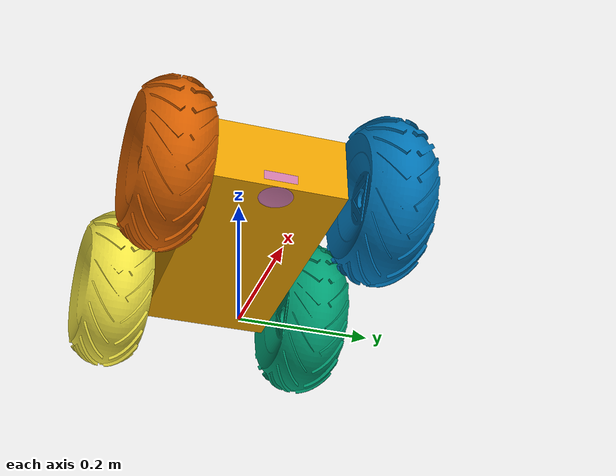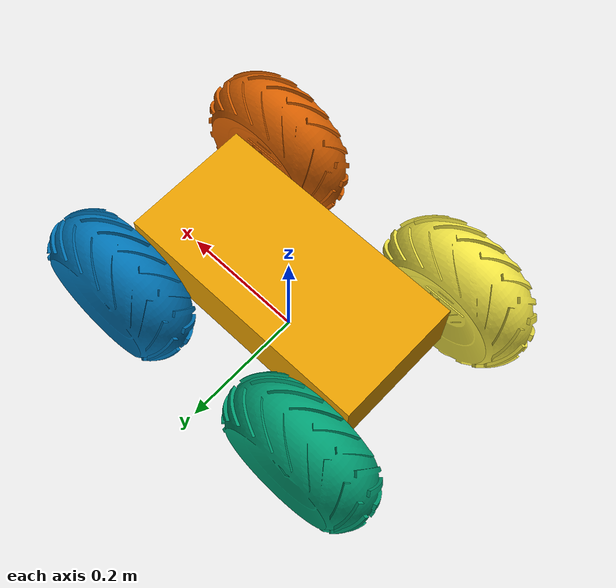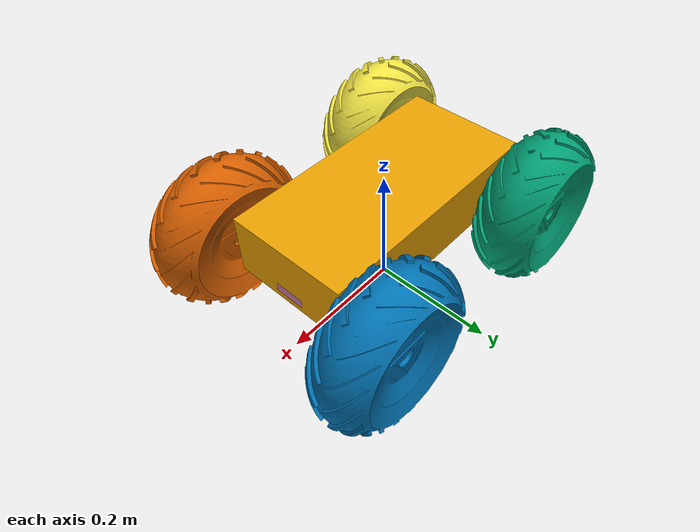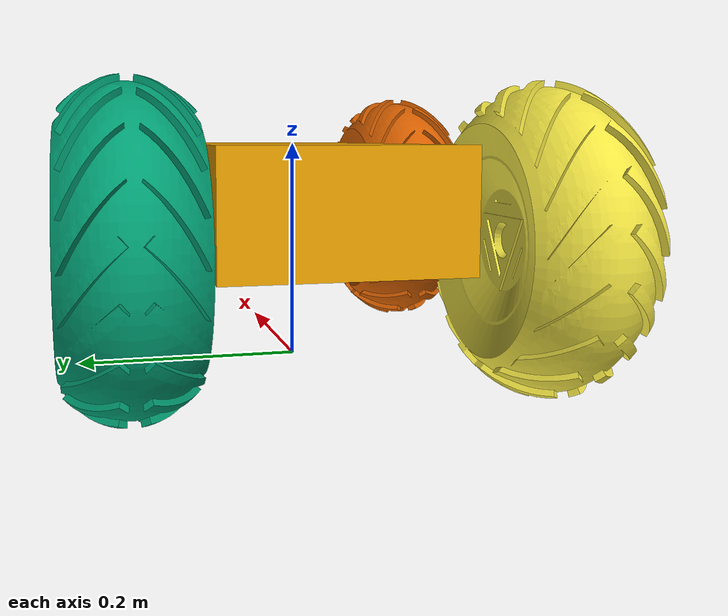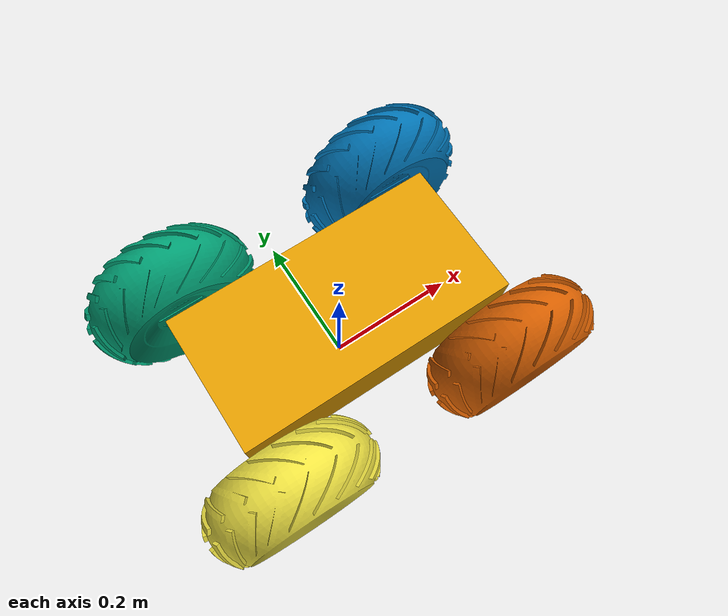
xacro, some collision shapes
<?xml version='1.0'?>

<robot name="iBot" xmlns:xacro="http://www.ros.org/wiki/xacro">

  <xacro:include filename="iBot.gazebo" />
  <!-- ************************ ROBOT CONSTANTS ****************************** -->
  <xacro:property name="chassis_length" value="0.4"/>
  <xacro:property name="chassis_width" value="0.2"/>
  <xacro:property name="chassis_height" value="0.1"/>
  <xacro:property name="wheel_radius" value="0.125"/>
  <xacro:property name="wheel_width" value="0.1"/>
  <xacro:property name="wheel_ygap" value="0.01"/>
  <xacro:property name="wheel_zoff" value="0.025"/>
  <xacro:property name="wheel_xoff" value="0.175"/>
  <xacro:property name="camera_length" value="0.05"/>
  <xacro:property name="camera_xoff" value="${(chassis_length/2-camera_length/2)}"/>
  <xacro:property name="camera_yoff" value="0"/>
  <xacro:property name="camera_zoff" value="-${(chassis_height/2-camera_length/2)}"/>
  <xacro:property name="imu_length" value="0.05"/>

  <!-- *******************INERTIAS ***************************************** -->
  <xacro:macro name="cylinder_inertia" params="m r h">
    <inertial>
      <origin xyz="0 0 0" rpy="${pi/2} 0 0" />
      <mass value="${m}"/>
      <inertia ixx="2.369791666666667" ixy="0" ixz="0" iyy="2.369791666666667" iyz="0" izz="3.90625" />
    </inertial>
  </xacro:macro>
  <xacro:macro name="box_inertia" params="m w h d">
    <inertial>
      <origin xyz="0 0 0" rpy="${pi/2} 0 ${pi/2}"/>
      <mass value="${m}"/>
      <inertia ixx="0.21250000000000005" ixy="0.0" ixz="0.0" iyy="0.25000000000000006" iyz="0.0" izz="0.06250000000000001" />
    </inertial>
  </xacro:macro>

  <!-- ******************** BASE LINK ************************************** -->
  <link name="chassis">

    <collision name="collision">
      <origin xyz="0 0 0" rpy=" 0 0 0"/>
      <geometry>
        <box size="${chassis_length} ${chassis_width} ${chassis_height}"/>
      </geometry>
    </collision>

    <visual name="chassis_visual">
      <origin xyz="0 -0 0" rpy=" ${pi/2} 0 0"/>
      <geometry>
        <mesh filename="package://iBot/meshes/chassis3.obj"/>
      </geometry>
      <transparency>0</transparency>
      <cast_shadows>1</cast_shadows>
    </visual>

    <xacro:box_inertia m="15" w="${chassis_width}" h="${chassis_height}" d="${chassis_length}"/>
  </link>

  <!-- ****************** ROBOT BASE FOOTPRINT ***************************  -->
  <!-- Define the center of the main robot chassis projected on the ground -->
  <link name="robot_footprint"/>

  <!-- The base footprint of the robot is located underneath the chassis -->
  <joint name="robot_footprint_joint" type="fixed">
    <!-- NOTE- joint's orign is defined w.r.t. parent's reference frame-->
    <origin xyz="0 0 ${(wheel_radius+wheel_zoff)}" rpy="0 0 0" />
    <child link="chassis"/>
    <parent link="robot_footprint" />
  </joint>

  <!-- ************************** DRIVE WHEELS ***************************** -->
  <xacro:macro name="wheel" params="prefix x_reflect y_reflect">
    <link name="${prefix}_link">
      <visual>
        <origin xyz="0 0 0" rpy="${pi/2} 0 0"/>
        <geometry>
            <mesh filename="package://iBot/meshes/wheel3.obj"/>
        </geometry>
        <transparency>0</transparency>
        <cast_shadows>1</cast_shadows>
      </visual>

      <collision>
        <origin xyz="0 0 0" rpy="${pi/2} 0 0"/>
        <geometry>
          <cylinder radius="${wheel_radius}" length="${wheel_width}"/>
        </geometry>
        <surface>
        <friction>
          <ode>
            <mu>10.0</mu>
            <mu2>5.0</mu2>
          </ode>
        </friction>
      </surface>
      </collision>

      <xacro:cylinder_inertia m="7" r="${wheel_radius}" h="${wheel_width}"/>
    </link>

    <joint name="${prefix}_joint" type="revolute">
      <parent link="chassis"/>
      <child link="${prefix}_link"/>
      <origin xyz="${x_reflect*wheel_xoff} ${y_reflect*(chassis_width/2+wheel_width/2+wheel_ygap)} ${-wheel_zoff}" rpy="0 0 0"/>
      <limit upper="1e+16" lower="-1e+16" effort="1000" velocity="1000"/>
      <axis xyz="0 1 0"/>
      <dynamics damping="1.0" friction="1.0" spring_reference="0"
        spring_stiffness="0" />
    </joint>
  </xacro:macro>

  <!-- Instantiate four wheels using the macro we just made -->
  <!-- ********************** BACK LEFT WHEEL ****************************** -->
  <xacro:wheel prefix="back_left_wheel" x_reflect="-1" y_reflect="1" />
  <!-- ********************** BACK RIGHT WHEEL ***************************** -->
  <xacro:wheel prefix="back_right_wheel" x_reflect="-1" y_reflect="-1" />
  <!-- ********************** FRONT LEFT WHEEL ***************************** -->
  <xacro:wheel prefix="front_left_wheel" x_reflect="1" y_reflect="1" />
  <!-- ********************** FRONT RIGHT WHEEL **************************** -->
  <xacro:wheel prefix="front_right_wheel" x_reflect="1" y_reflect="-1" />

  <!-- ************************** CAMERA *************************** -->
  <link name="camera">

    <xacro:box_inertia m="0.1" w="${camera_length}" h="${camera_length}" d="${camera_length}"/>

    <visual name="camera_visual">
      <origin xyz="0 0 0" rpy="0 0 ${pi/2}" />
      <geometry>
        <mesh filename="package://iBot/meshes/camera.obj"/>
      </geometry>
      <transparency>0</transparency>
      <cast_shadows>1</cast_shadows>
    </visual>

    <collision name="camera_colision">
      <origin xyz="0 0 0" rpy="0 0 0" />
      <geometry>
        <box size="${camera_length} ${camera_length} ${camera_length}"/>
      </geometry>
    </collision>
  </link>

  <joint type="fixed" name="camera_joint">
    <origin xyz="${camera_xoff} ${camera_yoff} ${camera_zoff}" rpy="0 1.5707 0"/>
    <parent link="chassis"/>
    <child link="camera"/>
  </joint>

  <link name="camera_frame"/>

  <joint name="camera_frame_joint" type="fixed">
    <origin xyz="${camera_length/2} 0 0" rpy="${-pi/2} 0 ${-pi/2}"/>
    <parent link="camera"/>
    <child link="camera_frame"/>
  </joint>

  <!-- ************************** IMU *************************** -->
  <link name="imu">
    <xacro:box_inertia m="0.1" w="${imu_length}" h="${imu_length}" d="${imu_length}"/>

    <visual name="imu_visual">
      <origin xyz="0 0 0" rpy="0 0 0" />
      <geometry>
        <box size="${imu_length} ${imu_length} ${imu_length}"/>
      </geometry>
    </visual>

    <collision name="imu_colision">
      <origin xyz="0 0 0" rpy="0 0 0" />
      <geometry>
        <box size="${imu_length} ${imu_length} ${imu_length}"/>
      </geometry>
    </collision>
  </link>

  <joint type="fixed" name="imu_joint">
    <origin xyz="0 0 0" rpy="0 0 0"/>
    <parent link="chassis"/>
    <child link="imu"/>
  </joint>

  <gazebo reference="imu">
    <material>Gazebo/Red</material>
  </gazebo>

</robot>
